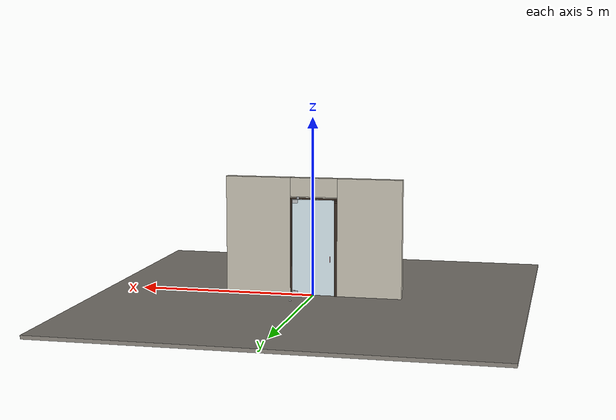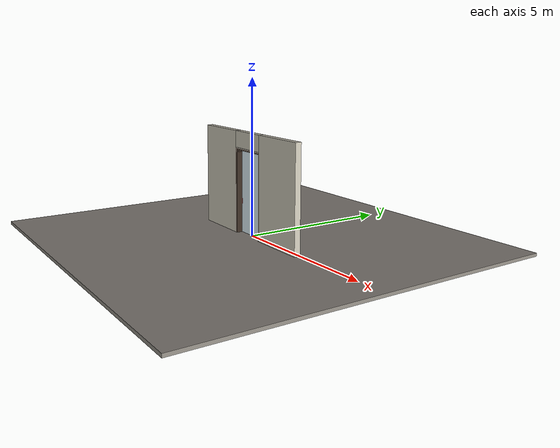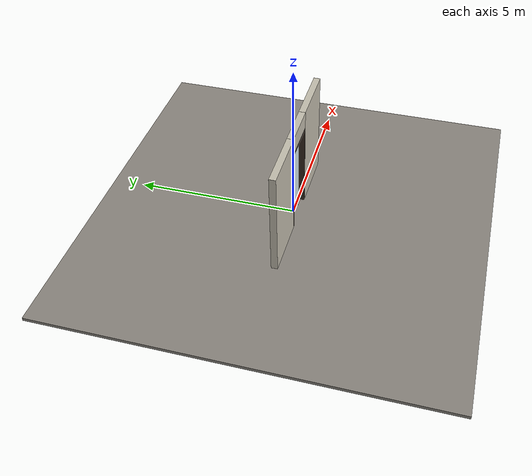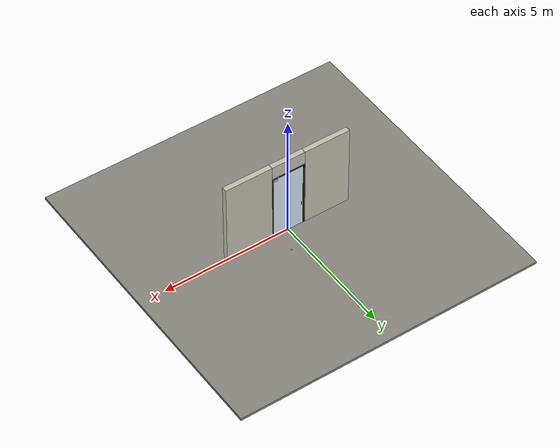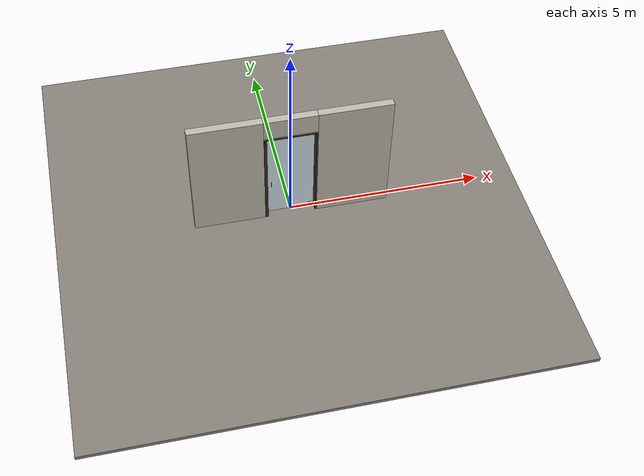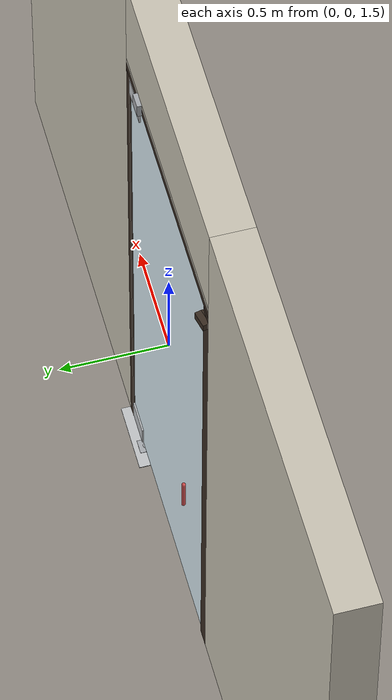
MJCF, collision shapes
<?xml version="1.0" ?>
<mujoco model="db0308_pivot_full">
  <compiler angle="radian" meshdir="../../hardware" texturedir="../../textures" autolimits="true" inertiafromgeom="false"/>
  <option timestep="0.002" integrator="implicitfast" cone="elliptic" impratio="10" noslip_iterations="3">
    <flag multiccd="enable"/>
  </option>
  <size memory="16M"/>
  <default>
    <geom condim="4" solref="0.005 1" solimp="0.95 0.99 0.001"/>
    <joint solreflimit="0.005 1" solimplimit="0.95 0.99 0.001"/>
    <tendon solreflimit="0.005 1"/>
    <equality solref="0.002 1"/>
  </default>
  <visual>
    <headlight ambient="0.4 0.4 0.4" diffuse="0.7 0.7 0.7" specular="0.2 0.2 0.2"/>
    <quality shadowsize="4096"/>
    <map znear="0.01" zfar="60"/>
  </visual>
  <asset>
    <mesh name="pull_1e5d69a91a" file="pull_1e5d69a91a.obj"/>
    <material name="mat_floor" rgba="0.55 0.53 0.5 1" specular="0.2" shininess="0.15" reflectance="0"/>
    <material name="mat_wall" rgba="0.78 0.76 0.7 1" specular="0.2" shininess="0.1" reflectance="0"/>
    <material name="mat_leaf" rgba="0.85 0.92 0.95 0.25" specular="0.2" shininess="0.95" reflectance="0.1"/>
    <material name="mat_glass_leaf" rgba="0.85 0.92 0.95 0.25" specular="0.2" shininess="0.95" reflectance="0.1"/>
    <material name="mat_patch" rgba="0.75 0.76 0.77 1" specular="0.8" shininess="0.65" reflectance="0.4"/>
    <material name="mat_hinge" rgba="0.65 0.66 0.68 1" specular="0.74" shininess="0.5" reflectance="0.36"/>
    <material name="mat_op_stainless" rgba="0.75 0.76 0.77 1" specular="0.8" shininess="0.65" reflectance="0.4"/>
    <material name="mat_bolt" rgba="0.75 0.76 0.77 1" specular="0.8" shininess="0.65" reflectance="0.4"/>
    <material name="mat_frame" rgba="0.22 0.17 0.13 1" specular="0.8" shininess="0.6" reflectance="0.4"/>
    <material name="mat_closer" rgba="0.75 0.76 0.77 1" specular="0.8" shininess="0.65" reflectance="0.4"/>
    <material name="mat_stop" rgba="0.9 0.9 0.92 1" specular="0.8" shininess="0.9" reflectance="0.4"/>
    <texture name="skybox" type="skybox" builtin="gradient" rgb1="0.6 0.7 0.85" rgb2="0.9 0.92 0.95" width="256" height="256"/>
  </asset>
  <worldbody>
    <light name="sun" pos="1.5 -2.5 4" dir="-0.3 0.5 -0.8" directional="true" diffuse="0.8 0.8 0.8" specular="0.3 0.3 0.3" castshadow="true"/>
    <light name="fill" pos="-1.5 2.5 3" dir="0.3 -0.5 -0.7" directional="true" diffuse="0.35 0.35 0.4" castshadow="false"/>
    <camera name="robot_view" pos="0 -3.2545 2.2429" xyaxes="1 0 0 0 0.26963 0.962964" fovy="52"/>
    <camera name="far_view" pos="0 3.0805 2.2429" xyaxes="-1 0 0 0 -0.26963 0.962964" fovy="52"/>
    <camera name="iso" pos="-2.4073 -2.7477 2.7497" xyaxes="0.741536 -0.670913 0 0.242917 0.268487 0.932151" fovy="46"/>
    <camera name="detail_handle" pos="-0.315 -0.866 1.33" xyaxes="0.97561 0.219512 0 -0.070934 0.315262 0.94635" fovy="38"/>
    <geom name="floor" type="box" size="6 6 0.05" pos="0 0 -0.05" material="mat_floor" group="0" contype="1" conaffinity="1" friction="0.8 0.005 0.0001" density="2400"/>
    <geom name="wall_left" type="box" size="0.9095 0.1 1.656" pos="-1.5905 -0.087 1.656" material="mat_wall" group="0" contype="1" conaffinity="1" friction="0.6 0.005 0.0001" density="800"/>
    <geom name="wall_right" type="box" size="0.9245 0.1 1.656" pos="1.5755 -0.087 1.656" material="mat_wall" group="0" contype="1" conaffinity="1" friction="0.6 0.005 0.0001" density="800"/>
    <geom name="wall_header" type="box" size="0.666 0.1 0.2625" pos="-0.015 -0.087 3.0495" material="mat_wall" group="0" contype="1" conaffinity="1" friction="0.6 0.005 0.0001" density="800"/>
    <geom name="pivot_bottom_socket" type="box" size="0.035 0.035 0.008" pos="0.426 0 -0.002" material="mat_hinge" group="1" contype="0" conaffinity="0" density="7850"/>
    <geom name="pivot_top_bracket" type="box" size="0.035 0.035 0.0355" pos="0.426 0 2.7515" material="mat_hinge" group="1" contype="0" conaffinity="0" density="7850"/>
    <geom name="jamb_hinge" type="box" size="0.0225 0.1 1.356" pos="0.6285 -0.087 1.356" material="mat_frame" group="0" contype="1" conaffinity="1" friction="0.6 0.005 0.0001" density="300"/>
    <geom name="strike_2658_wall_n" type="box" size="0.0375 0.08975 0.019" pos="-0.6435 -0.09725 2.658" material="mat_frame" group="0" contype="1" conaffinity="1" friction="0.6 0.005 0.0001" density="300"/>
    <geom name="strike_2658_wall_p" type="box" size="0.0375 0.008 0.019" pos="-0.6435 0.0155 2.658" material="mat_frame" group="0" contype="1" conaffinity="1" friction="0.6 0.005 0.0001" density="300"/>
    <geom name="strike_2658_ramp" type="box" size="0.0375 0.015403 0.019" pos="-0.646019 0.029979 2.658" quat="0.993439 0 0 0.114365" material="mat_frame" group="0" contype="1" conaffinity="1" friction="0.12 0.005 0.0001" density="300"/>
    <geom name="strike_2658_ramp_n" type="box" size="0.0375 0.015403 0.019" pos="-0.646019 -0.017979 2.658" quat="0.993439 0 0 -0.114365" material="mat_frame" group="0" contype="1" conaffinity="1" friction="0.12 0.005 0.0001" density="300"/>
    <geom name="strike_2658_back" type="box" size="0.0325 0.0075 0.019" pos="-0.6485 0 2.658" material="mat_frame" group="0" contype="1" conaffinity="1" friction="0.6 0.005 0.0001" density="300"/>
    <geom name="jamb_strike_0" type="box" size="0.0375 0.1 1.3195" pos="-0.6435 -0.087 1.3195" material="mat_frame" group="0" contype="1" conaffinity="1" friction="0.6 0.005 0.0001" density="300"/>
    <geom name="jamb_strike_1" type="box" size="0.0375 0.1 0.0175" pos="-0.6435 -0.087 2.6945" material="mat_frame" group="0" contype="1" conaffinity="1" friction="0.6 0.005 0.0001" density="300"/>
    <geom name="jamb_head" type="box" size="0.666 0.1 0.0225" pos="-0.015 -0.087 2.7345" material="mat_frame" group="0" contype="1" conaffinity="1" friction="0.6 0.005 0.0001" density="300"/>
    <geom name="head_stud" type="box" size="0.666 0.1 0.015" pos="-0.015 -0.087 2.772" material="mat_wall" group="0" contype="1" conaffinity="1" friction="0.6 0.005 0.0001" density="500"/>
    <geom name="floor_spring_cover" type="box" size="0.17 0.06 0.002" pos="0.486 0 0.002" material="mat_closer" group="1" contype="0" conaffinity="0" density="7900"/>
    <geom name="floor_stop_dome" type="sphere" size="0.025" pos="0.459 0.846 0" material="mat_stop" group="0" contype="1" conaffinity="1" friction="0.6 0.005 0.0001" density="7000"/>
    <site name="approach_point" pos="0 -1.5 0" quat="1 0 0 0" size="0.05" rgba="0.2 0.9 0.2 0.5" group="4"/>
    <site name="goal_point" pos="0 1.5 0" quat="1 0 0 0" size="0.05" rgba="0.2 0.9 0.2 0.5" group="4"/>
    <site name="door_plane_center" pos="0 0 1.356" quat="1 0 0 0" size="0.02" rgba="0.2 0.9 0.2 0.5" group="4"/>
    <body name="leaf" pos="0.606 0 0">
      <inertial pos="-0.676961 0 1.311637" mass="102.929238" quat="0.511768 0.511768 -0.487948 0.487948" diaginertia="13.882461839 56.167359098 69.934454449"/>
      <joint name="leaf_hinge" type="hinge" axis="0 0 -1" pos="-0.18 0 0" limited="true" range="0 1.570796" solreflimit="0.02 1" damping="9.011129" frictionloss="2.045594" stiffness="38.133524" springref="-1.416077" armature="0.02"/>
      <geom name="leaf_glass" type="box" size="0.6 0.006 1.35" pos="-0.606 0 1.358" material="mat_glass_leaf" group="0" contype="1" conaffinity="1" friction="0.4 0.005 0.0001" density="1"/>
      <geom name="leaf_patch_bot" type="box" size="0.08 0.014 0.05" pos="-0.086 0 0.068" material="mat_patch" group="1" contype="0" conaffinity="0" density="1"/>
      <geom name="leaf_patch_top" type="box" size="0.08 0.014 0.05" pos="-0.086 0 2.648" material="mat_patch" group="1" contype="0" conaffinity="0" density="1"/>
      <geom name="pivot_bottom" type="cylinder" size="0.014 0.004" pos="-0.18 0 0.003" material="mat_hinge" group="1" contype="0" conaffinity="0" density="7850"/>
      <geom name="pivot_top" type="cylinder" size="0.014 0.004" pos="-0.18 0 2.712" material="mat_hinge" group="1" contype="0" conaffinity="0" density="7850"/>
      <geom name="leaf_pull_n" type="mesh" mesh="pull_1e5d69a91a" pos="-1.101 -0.006 1.05" quat="0 0 -0.707107 0.707107" material="mat_op_stainless" group="1" contype="0" conaffinity="0" density="3000"/>
      <geom name="leaf_pull_col_n" type="capsule" size="0.0095 0.08" pos="-1.101 -0.066 1.05" material="mat_op_stainless" group="3" contype="1" conaffinity="1" rgba="0.8 0.3 0.3 0.25" friction="0.7 0.01 0.0001" density="3000"/>
      <geom name="leaf_pull_p" type="mesh" mesh="pull_1e5d69a91a" pos="-1.101 0.006 1.05" quat="0 0 0.707107 0.707107" material="mat_op_stainless" group="1" contype="0" conaffinity="0" density="3000"/>
      <geom name="leaf_pull_col_p" type="capsule" size="0.0095 0.08" pos="-1.101 0.066 1.05" material="mat_op_stainless" group="3" contype="1" conaffinity="1" rgba="0.8 0.3 0.3 0.25" friction="0.7 0.01 0.0001" density="3000"/>
      <geom name="leaf_mag_catch_faceplate" type="box" size="0.0006 0.004 0.029" pos="-1.2054 0 2.658" material="mat_bolt" group="1" contype="0" conaffinity="0" density="8500"/>
      <site name="leaf_pull_grip_n" pos="-1.101 -0.066 1.05" quat="1 0 0 0" size="0.012" rgba="0.2 0.9 0.2 0.5" group="4"/>
      <site name="leaf_pull_grip_p" pos="-1.101 0.066 1.05" quat="1 0 0 0" size="0.012" rgba="0.2 0.9 0.2 0.5" group="4"/>
      <site name="leaf_edge_mid" pos="-1.206 0 1.35" quat="1 0 0 0" size="0.02" rgba="0.2 0.9 0.2 0.5" group="4"/>
      <body name="leaf_mag_catch" pos="-1.206 0 2.658">
        <inertial pos="0.012 0 0" mass="0.030762" quat="0 0 -0.707107 0.707107" diaginertia="0.000000526 0.000002949 0.000002949"/>
        <joint name="leaf_mag_catch_slide" type="slide" axis="1 0 0" limited="true" range="0 0.006" damping="2" frictionloss="0.3" stiffness="5833.333333" springref="-0.006" armature="0.1"/>
        <geom name="leaf_mag_catch_capsule" type="capsule" size="0.006 0.012" pos="0.012 0 0" quat="0.707107 0 -0.707107 0" material="mat_bolt" group="0" contype="1" conaffinity="1" friction="0.2 0.005 0.0001" density="8500"/>
      </body>
    </body>
  </worldbody>
  <sensor>
    <jointpos name="leaf_hinge_pos" joint="leaf_hinge"/>
    <jointvel name="leaf_hinge_vel" joint="leaf_hinge"/>
    <jointpos name="leaf_mag_catch_slide_pos" joint="leaf_mag_catch_slide"/>
    <jointvel name="leaf_mag_catch_slide_vel" joint="leaf_mag_catch_slide"/>
  </sensor>
</mujoco>
